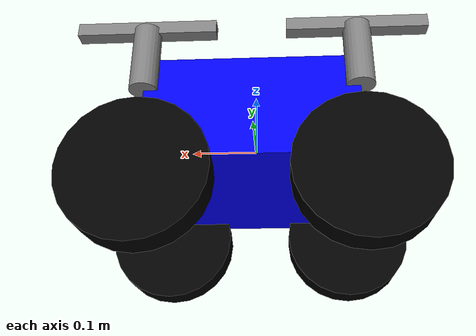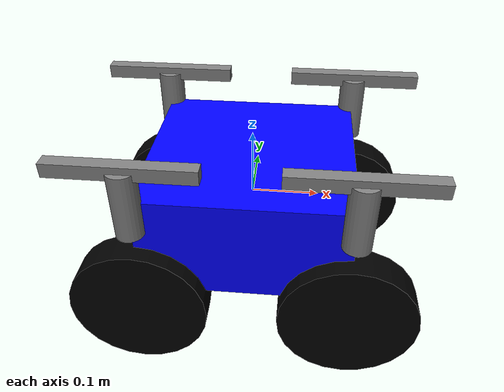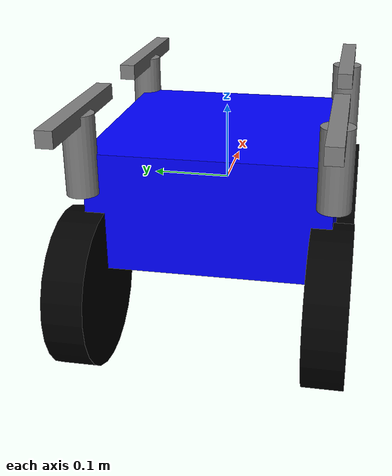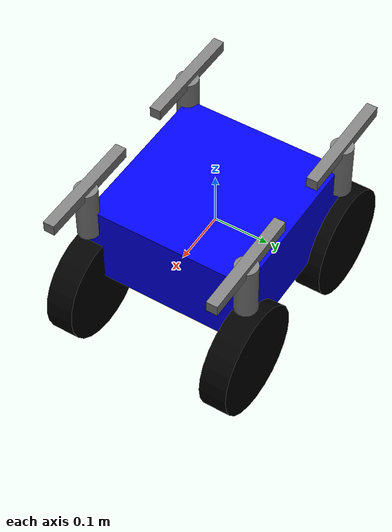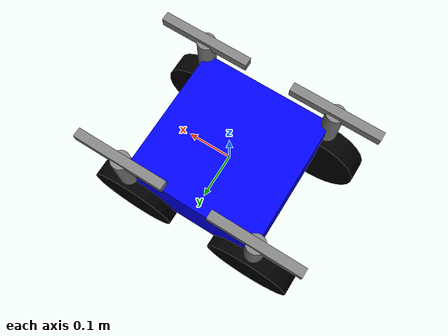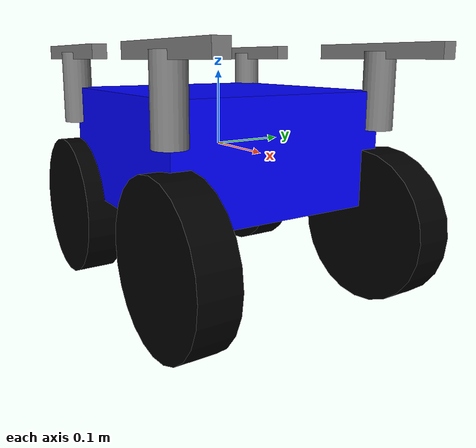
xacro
<?xml version="1.0"?>
<robot name="simple_multimodal" xmlns:xacro="http://www.ros.org/wiki/xacro">
    <xacro:property name="wheel_radius" value="0.1" />
    <xacro:property name="wheel_width" value="0.05" />
    <xacro:property name="body_size" value="0.3" />
    <xacro:property name="body_height" value="0.15" />
    <xacro:property name="rotor_length" value="0.2" />
    <xacro:property name="rotor_thickness" value="0.02" />
    <xacro:property name="connector_radius" value="0.02" />
    <xacro:property name="connector_height" value="0.1" />

    <gazebo>
      <plugin
        filename="libignition-gazebo-diff-drive-system.so"
        name="ignition::gazebo::systems::DiffDrive">
        <left_joint>wheel_FL_joint</left_joint>
        <right_joint>wheel_FR_joint</right_joint>
        <left_joint>wheel_RL_joint</left_joint>
        <right_joint>wheel_RR_joint</right_joint>
        <wheel_separation>${body_size}</wheel_separation>
        <wheel_radius>${wheel_radius}</wheel_radius>
        <frame_id>odom</frame_id>
        <child_frame_id>base_link</child_frame_id>
        <odom_publish_frequency>20</odom_publish_frequency>
        <topic>/cmd_vel</topic>
        <max_linear_acceleration>2.5</max_linear_acceleration>
        <max_angular_acceleration>3</max_angular_acceleration>
        <min_linear_acceleration>-2.5</min_linear_acceleration>
        <min_angular_acceleration>-3</min_angular_acceleration>
      </plugin>
      <plugin filename="libignition-gazebo-odometry-publisher-system.so" name="ignition::gazebo::systems::OdometryPublisher">
        <update_frequency>10</update_frequency>
        <odom_topic>true_pose</odom_topic>
        <odom_frame>world</odom_frame>
        <robot_base_frame>base_link</robot_base_frame>
        <tf_topic>tf</tf_topic>
      </plugin>
    </gazebo>
    <gazebo>
      <plugin name="gz_plugins::FakeFlightController" filename="libfake_flight_controller.so">
        <topic>/drone/cmd_vel</topic>
        <forceConstant>9.80</forceConstant>
      </plugin>
    </gazebo>

    <link name="base_link">
        <visual>
            <geometry>
                <box size="${body_size} ${body_size} ${body_height}"/>
            </geometry>
            <material name="blue">
                <color rgba="0 0 1 1"/>
            </material>
        </visual>
        <collision>
            <geometry>
                <box size="${body_size} ${body_size} ${body_height}"/>
            </geometry>
        </collision>
        <inertial>
            <mass value="0.92"/>
            <inertia ixx="0.1" ixy="0.0" ixz="0.0" iyy="0.1" iyz="0.0" izz="0.1"/>
        </inertial>
    </link>

    <xacro:macro name="Lwheel" params="wheel_name x y z">
        <link name="${wheel_name}">
            <visual>
                <geometry>
                    <cylinder radius="${wheel_radius}" length="${wheel_width}"/>
                </geometry>
                <material name="black">
                    <color rgba="0 0 0 1"/>
                </material>
            </visual>
            <collision>
                <geometry>
                    <cylinder radius="${wheel_radius}" length="${wheel_width}"/>
                </geometry>
            </collision>
            <inertial>
                <mass value="0.01"/>
                <inertia ixx="0.01" ixy="0.0" ixz="0.0" iyy="0.01" iyz="0.0" izz="0.01"/>
            </inertial>
        </link>
        <joint name="${wheel_name}_joint" type="continuous">
            <parent link="base_link"/>
            <child link="${wheel_name}"/>
            <origin xyz="${x} ${y} ${z}" rpy="1.57 0 0"/>
            <axis xyz="0 0 -1"/>
        </joint>
    </xacro:macro>

        <xacro:macro name="Rwheel" params="wheel_name x y z">
        <link name="${wheel_name}">
            <visual>
                <geometry>
                    <cylinder radius="${wheel_radius}" length="${wheel_width}"/>
                </geometry>
                <material name="black">
                    <color rgba="0 0 0 1"/>
                </material>
            </visual>
            <collision>
                <geometry>
                    <cylinder radius="${wheel_radius}" length="${wheel_width}"/>
                </geometry>
            </collision>
            <inertial>
                <mass value="0.01"/>
                <inertia ixx="0.01" ixy="0.0" ixz="0.0" iyy="0.01" iyz="0.0" izz="0.01"/>
            </inertial>
        </link>
        <joint name="${wheel_name}_joint" type="continuous">
            <parent link="base_link"/>
            <child link="${wheel_name}"/>
            <origin xyz="${x} ${y} ${z}" rpy="-1.57 0 0"/>
            <axis xyz="0 0 1"/>
        </joint>
    </xacro:macro>

    <xacro:macro name="rotor" params="rotor_name x y z">
        <link name="${rotor_name}_connector">
            <visual>
                <geometry>
                    <cylinder radius="${connector_radius}" length="${connector_height}"/>
                </geometry>
                <material name="gray">
                    <color rgba="0.5 0.5 0.5 1"/>
                </material>
            </visual>
            <collision>
                <geometry>
                    <cylinder radius="${connector_radius}" length="${connector_height}"/>
                </geometry>
            </collision>
            <inertial>
                <mass value="0.0"/>
                <inertia ixx="0.0" ixy="0.0" ixz="0.0" iyy="0.0" iyz="0.0" izz="0.0"/>
            </inertial>
        </link>
        <joint name="${rotor_name}_connector_joint" type="fixed">
            <parent link="base_link"/>
            <child link="${rotor_name}_connector"/>
            <origin xyz="${x} ${y} ${z}" rpy="0 0 0"/>
        </joint>
        <link name="${rotor_name}">
            <visual>
                <geometry>
                    <box size="${rotor_length} ${rotor_thickness} ${rotor_thickness}"/>
                </geometry>
                <material name="gray">
                    <color rgba="0.5 0.5 0.5 1"/>
                </material>
            </visual>
            <collision>
                <geometry>
                    <box size="${rotor_length} ${rotor_thickness} ${rotor_thickness}"/>
                </geometry>
            </collision>
            <inertial>
                <mass value="0.01"/>
                <inertia ixx="0.01" ixy="0.0" ixz="0.0" iyy="0.01" iyz="0.0" izz="0.01"/>
            </inertial>
        </link>
        <joint name="${rotor_name}_joint" type="continuous">
            <parent link="${rotor_name}_connector"/>
            <child link="${rotor_name}"/>
            <origin xyz="0 0 ${connector_height/2}" rpy="0 0 0"/>
            <axis xyz="0 0 1"/>
        </joint>
    </xacro:macro>

    <xacro:Lwheel wheel_name="wheel_FL" x="${body_size/2}" y="${body_size/2}" z="-0.1"/>
    <xacro:Rwheel wheel_name="wheel_FR" x="${body_size/2}" y="-${body_size/2}" z="-0.1"/>
    <xacro:Lwheel wheel_name="wheel_RL" x="-${body_size/2}" y="${body_size/2}" z="-0.1"/>
    <xacro:Rwheel wheel_name="wheel_RR" x="-${body_size/2}" y="-${body_size/2}" z="-0.1"/>

    <xacro:rotor rotor_name="rotor_FL" x="${body_size/2}" y="${body_size/2}" z="${body_height/2}"/>
    <xacro:rotor rotor_name="rotor_FR" x="${body_size/2}" y="-${body_size/2}" z="${body_height/2}"/>
    <xacro:rotor rotor_name="rotor_RL" x="-${body_size/2}" y="${body_size/2}" z="${body_height/2}"/>
    <xacro:rotor rotor_name="rotor_RR" x="-${body_size/2}" y="-${body_size/2}" z="${body_height/2}"/>
</robot>
